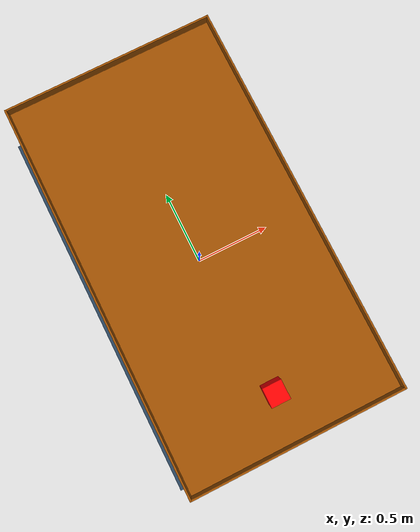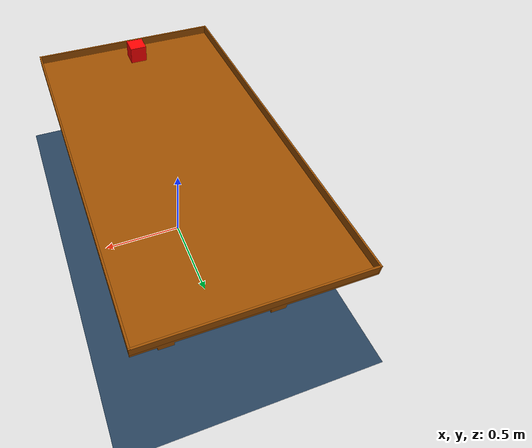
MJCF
<mujoco model="ur10_tracking_scene">

  <compiler meshdir="assets" conflict="merge"/>

  <option integrator="implicitfast"/>

  <!-- Assets -->
  <asset>
    <texture type="skybox" builtin="gradient" rgb1="0.3 0.5 0.7" rgb2="0 0 0"
        width="512" height="3072"/>
    <texture type="2d" name="groundplane" builtin="checker" mark="edge"
        rgb1="0.2 0.3 0.4" rgb2="0.1 0.2 0.3" markrgb="0.8 0.8 0.8" width="300" height="300"/>
    <material name="groundplane" texture="groundplane" texuniform="true"
        texrepeat="5 5" reflectance="0.2"/>

    <!-- Table -->
    <mesh name="simple_table" file="simple_table_2m.stl" scale="1.0 1.0 1.0"/>
    <mesh name="rail_a" file="rails_2m_a.stl" scale="1.0 1.0 1.0"/>
    <mesh name="rail_b" file="rails_2m_b.stl" scale="1.0 1.0 1.0"/>
    <mesh name="rail_c" file="rails_2m_c.stl" scale="1.0 1.0 1.0"/>
    <mesh name="rail_d" file="rails_2m_d.stl" scale="1.0 1.0 1.0"/>
    <material name="brown" rgba="0.6 0.3 0.0 1.0"/>
  </asset>

  <!-- Floor and light -->
  <worldbody>
    <light pos="0 0 1.5" dir="0 0 -1" directional="true"/>
    <geom name="floor" size="0 0 0.05" type="plane" material="groundplane"  friction="0.001 0.005 0.001"/>
  </worldbody>

  <!-- Table: Friction is important! Otherwise cube cannot slide -->
  <worldbody>
    <body name="table" pos="0.0 0.0 0.75">
      <geom type="mesh" mesh="simple_table" material="brown" friction="0.001 0.005 0.001" contype="1" conaffinity="1"/>
      <geom type="mesh" mesh="rail_a" material="brown" friction="0.001 0.005 0.001" contype="1" conaffinity="1"/>
      <geom type="mesh" mesh="rail_b" material="brown" friction="0.001 0.005 0.001" contype="1" conaffinity="1"/>
      <geom type="mesh" mesh="rail_c" material="brown" friction="0.001 0.005 0.001" contype="1" conaffinity="1"/>
      <geom type="mesh" mesh="rail_d" material="brown" friction="0.001 0.005 0.001" contype="1" conaffinity="1"/>
    </body>
  </worldbody>

  <!-- Cube to track -->
  <worldbody>
    <body name="red_cube" pos="0 -0.8 0.9">
      <geom type="box" size="0.05 0.05 0.05" rgba="1 0 0 1" friction="0.001 0.005 0.001"/>
      <joint name="red_cube_joint" type="free"/>
    </body>
  </worldbody>

  <!-- Actuator -->
  <actuator>
    <velocity name="red_cube_vel_x" joint="red_cube_joint" gear="1 0 0 0 0 0" ctrlrange="-20 20"/>
    <velocity name="red_cube_vel_y" joint="red_cube_joint" gear="0 1 0 0 0 0" ctrlrange="-20 20"/>
  </actuator>

</mujoco>
